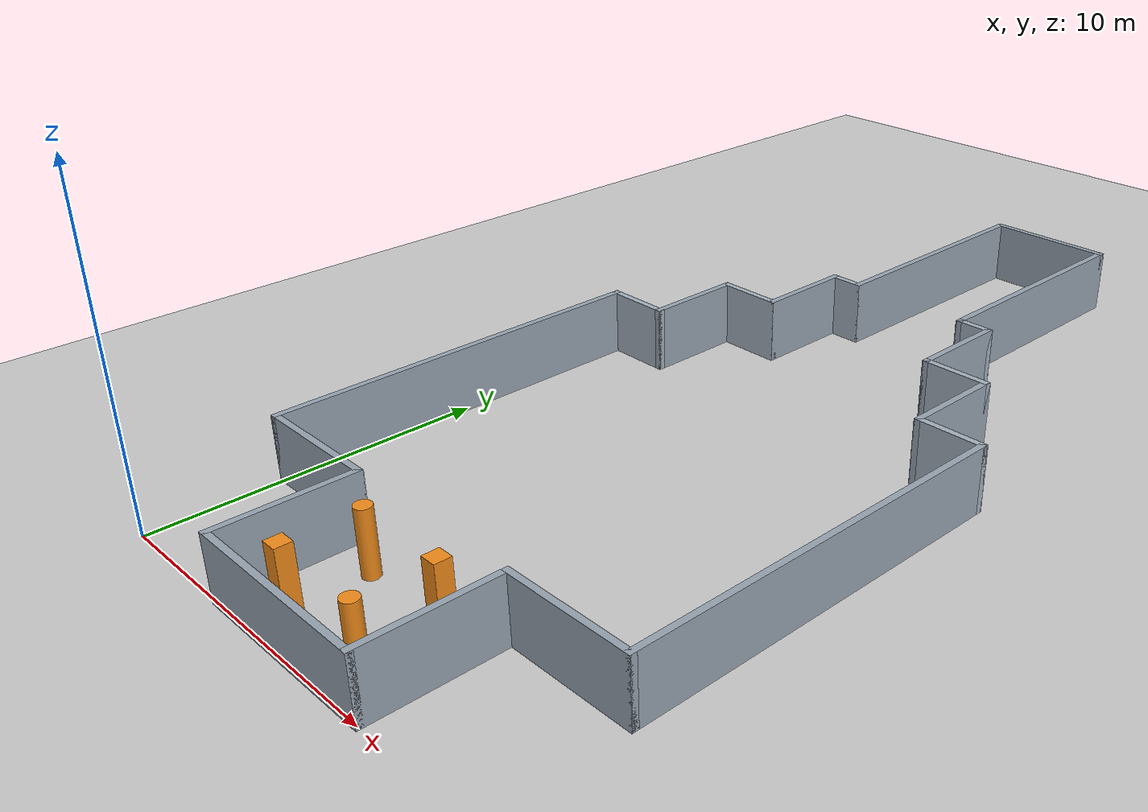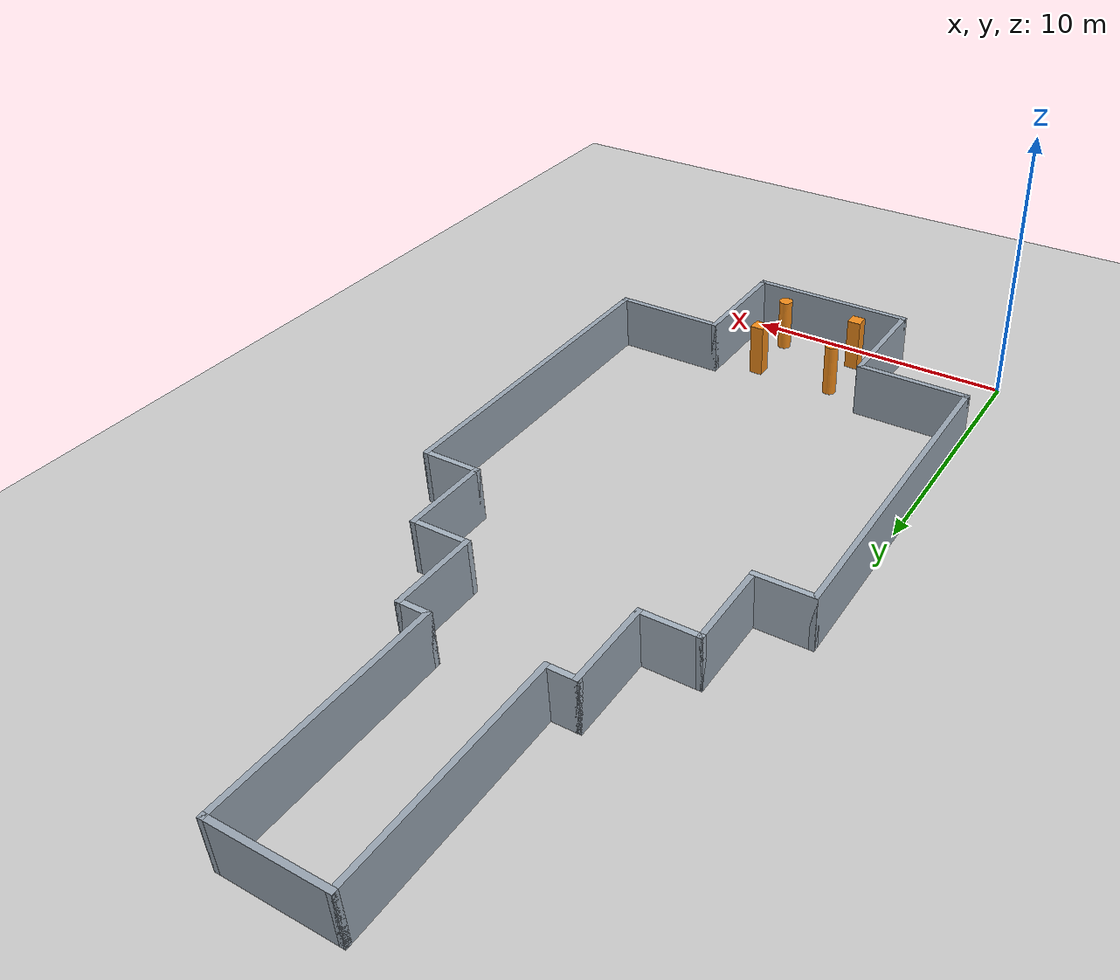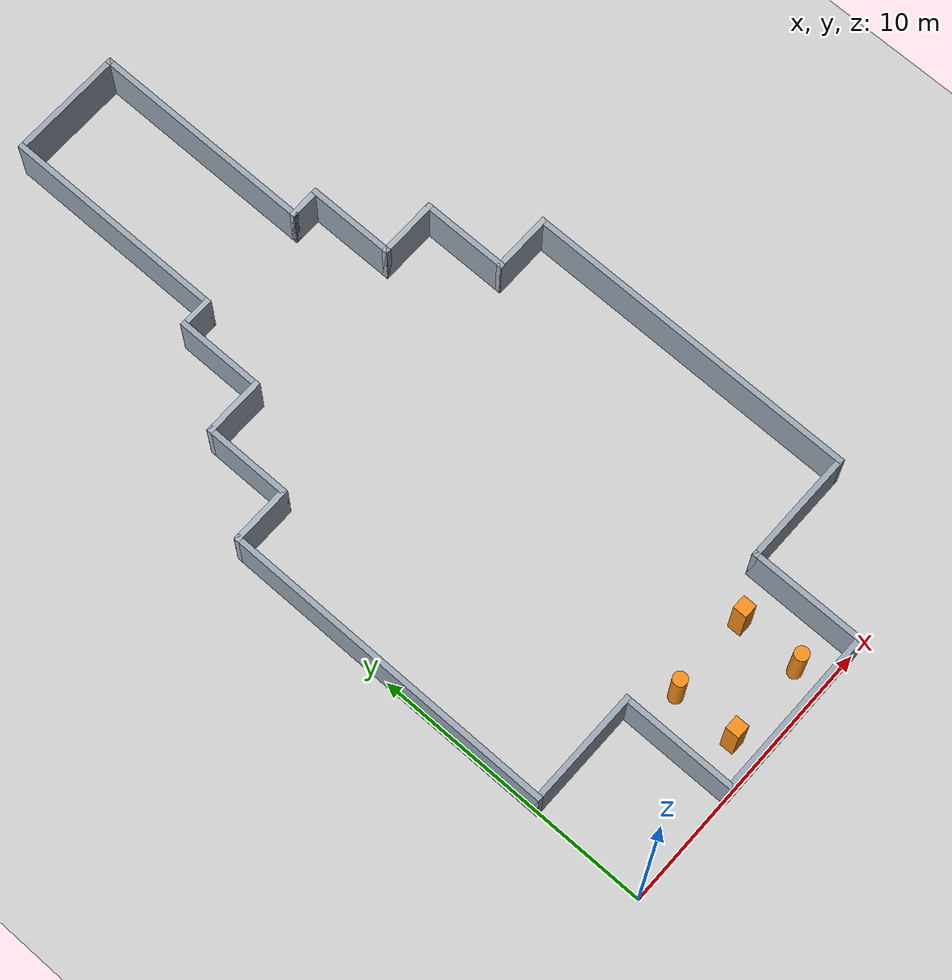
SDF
<?xml version="1.0" ?>
<sdf version="1.6">
  <world name="test_zone_world">
    <!-- 태양광 조명 -->
    <include>
      <uri>model://sun</uri>
    </include>

    <!-- 바닥 (Ground Plane) -->
    <include>
      <uri>model://ground_plane</uri>
    </include>

    <!-- 5-Zone 벤치마크 테스트 맵 모델 Include (U자형 2회 직각 꺾임 맵) -->
    <include>
      <uri>model://test_zone_map</uri>
      <pose>0 0 0 0 0 0</pose>
    </include>

    <!-- 물리 엔진 설정 (ODE 최적화) -->
    <physics type="ode">
      <real_time_update_rate>1000.0</real_time_update_rate>
      <max_step_size>0.001</max_step_size>
      <real_time_factor>1.0</real_time_factor>
      <ode>
        <solver>
          <type>quick</type>
          <iters>150</iters>
          <precon_iters>0</precon_iters>
          <sor>1.4</sor>
          <use_dynamic_moi_rescaling>1</use_dynamic_moi_rescaling>
        </solver>
        <constraints>
          <cfm>0.00001</cfm>
          <erp>0.2</erp>
          <contact_max_correcting_vel>2000.0</contact_max_correcting_vel>
          <contact_surface_layer>0.01</contact_surface_layer>
        </constraints>
      </ode>
    </physics>

    <!-- GUI 초기 카메라 조감도 시점 (14m x 30m 직선 하강형 맵 조감) -->
    <gui fullscreen="0">
      <camera name="overview_camera">
        <pose>7.0 -2.0 38.0 0.0 0.95 1.5707</pose>
        <view_controller>orbit</view_controller>
      </camera>
    </gui>
  </world>
</sdf>

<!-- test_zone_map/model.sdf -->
<sdf version="1.6">
  <model name="test_zone_map">
    <static>true</static>
    <allow_auto_disable>true</allow_auto_disable>

    <!-- 직선 하강형 점진적 확장 5-Zone 맵 (14m × 30m)                      -->
    <!-- 상단 좁은 복도(4m) → 점진 확장(6m→10m) → 대형 오픈(14m) → 회복(6m) -->
    <!-- LiDAR range_max=3.5m 절대 기준, Footprint 0.28×0.31m 기준          -->
    <!-- 경로: START(7,28) ↓ Z1 ↓ Z2 ↓ Z3(step1→step2) ↓ Z4(Open) ↓ Z5 ↓ GOAL -->

    <!--  벽체 1~20: 폐곡선 외곽 (시계 방향, 0.1m 모듈식 오버랩 보장)     -->

    <!-- 1. north_wall: Y=30, X: 5-9 (상단 복도 뚜껑) -->
    <link name="north_wall">
      <pose>7.0 30.0 1.0 0 0 0</pose>
      <collision name="collision"><geometry><box><size>4.2 0.2 2.0</size></box></geometry></collision>
      <visual name="visual">
        <geometry><box><size>4.2 0.2 2.0</size></box></geometry>
        <material>
          <ambient>0.4 0.45 0.5 1.0</ambient>
          <diffuse>0.6 0.65 0.7 1.0</diffuse>
          <script><uri>file://media/materials/scripts/gazebo.material</uri><name>Gazebo/Grey</name></script>
        </material>
      </visual>
    </link>

    <!-- 2. z12_east_wall: X=9, Y: 22-30 (Zone 1+2 동쪽 복도벽) -->
    <link name="z12_east_wall">
      <pose>9.0 26.0 1.0 0 0 0</pose>
      <collision name="collision"><geometry><box><size>0.2 8.2 2.0</size></box></geometry></collision>
      <visual name="visual">
        <geometry><box><size>0.2 8.2 2.0</size></box></geometry>
        <material>
          <ambient>0.4 0.45 0.5 1.0</ambient>
          <diffuse>0.6 0.65 0.7 1.0</diffuse>
          <script><uri>file://media/materials/scripts/gazebo.material</uri><name>Gazebo/Grey</name></script>
        </material>
      </visual>
    </link>

    <!-- 3. z3s1_east_cap: Y=22, X: 9-10 (Step1 동쪽 단차벽) -->
    <link name="z3s1_east_cap">
      <pose>9.5 22.0 1.0 0 0 0</pose>
      <collision name="collision"><geometry><box><size>1.2 0.2 2.0</size></box></geometry></collision>
      <visual name="visual">
        <geometry><box><size>1.2 0.2 2.0</size></box></geometry>
        <material>
          <ambient>0.45 0.5 0.55 1.0</ambient>
          <diffuse>0.65 0.7 0.75 1.0</diffuse>
          <script><uri>file://media/materials/scripts/gazebo.material</uri><name>Gazebo/Grey</name></script>
        </material>
      </visual>
    </link>

    <!-- 4. z3s1_east_wall: X=10, Y: 19-22 (Step1 동쪽 벽) -->
    <link name="z3s1_east_wall">
      <pose>10.0 20.5 1.0 0 0 0</pose>
      <collision name="collision"><geometry><box><size>0.2 3.2 2.0</size></box></geometry></collision>
      <visual name="visual">
        <geometry><box><size>0.2 3.2 2.0</size></box></geometry>
        <material>
          <ambient>0.4 0.45 0.5 1.0</ambient>
          <diffuse>0.6 0.65 0.7 1.0</diffuse>
          <script><uri>file://media/materials/scripts/gazebo.material</uri><name>Gazebo/Grey</name></script>
        </material>
      </visual>
    </link>

    <!-- 5. z3s2_east_cap: Y=19, X: 10-12 (Step2 동쪽 단차벽) -->
    <link name="z3s2_east_cap">
      <pose>11.0 19.0 1.0 0 0 0</pose>
      <collision name="collision"><geometry><box><size>2.2 0.2 2.0</size></box></geometry></collision>
      <visual name="visual">
        <geometry><box><size>2.2 0.2 2.0</size></box></geometry>
        <material>
          <ambient>0.45 0.5 0.55 1.0</ambient>
          <diffuse>0.65 0.7 0.75 1.0</diffuse>
          <script><uri>file://media/materials/scripts/gazebo.material</uri><name>Gazebo/Grey</name></script>
        </material>
      </visual>
    </link>

    <!-- 6. z3s2_east_wall: X=12, Y: 16-19 (Step2 동쪽 벽) -->
    <link name="z3s2_east_wall">
      <pose>12.0 17.5 1.0 0 0 0</pose>
      <collision name="collision"><geometry><box><size>0.2 3.2 2.0</size></box></geometry></collision>
      <visual name="visual">
        <geometry><box><size>0.2 3.2 2.0</size></box></geometry>
        <material>
          <ambient>0.4 0.45 0.5 1.0</ambient>
          <diffuse>0.6 0.65 0.7 1.0</diffuse>
          <script><uri>file://media/materials/scripts/gazebo.material</uri><name>Gazebo/Grey</name></script>
        </material>
      </visual>
    </link>

    <!-- 7. z4_east_cap: Y=16, X: 12-14 (Zone4 동쪽 단차벽) -->
    <link name="z4_east_cap">
      <pose>13.0 16.0 1.0 0 0 0</pose>
      <collision name="collision"><geometry><box><size>2.2 0.2 2.0</size></box></geometry></collision>
      <visual name="visual">
        <geometry><box><size>2.2 0.2 2.0</size></box></geometry>
        <material>
          <ambient>0.45 0.5 0.55 1.0</ambient>
          <diffuse>0.65 0.7 0.75 1.0</diffuse>
          <script><uri>file://media/materials/scripts/gazebo.material</uri><name>Gazebo/Grey</name></script>
        </material>
      </visual>
    </link>

    <!-- 8. z4_east_wall: X=14, Y: 4-16 (Zone4 동쪽 외벽) -->
    <link name="z4_east_wall">
      <pose>14.0 10.0 1.0 0 0 0</pose>
      <collision name="collision"><geometry><box><size>0.2 12.2 2.0</size></box></geometry></collision>
      <visual name="visual">
        <geometry><box><size>0.2 12.2 2.0</size></box></geometry>
        <material>
          <ambient>0.4 0.45 0.5 1.0</ambient>
          <diffuse>0.6 0.65 0.7 1.0</diffuse>
          <script><uri>file://media/materials/scripts/gazebo.material</uri><name>Gazebo/Grey</name></script>
        </material>
      </visual>
    </link>

    <!-- 9. z5_east_block: Y=4, X: 10-14 (Zone5 진입 동쪽 차단벽) -->
    <link name="z5_east_block">
      <pose>12.0 4.0 1.0 0 0 0</pose>
      <collision name="collision"><geometry><box><size>4.2 0.2 2.0</size></box></geometry></collision>
      <visual name="visual">
        <geometry><box><size>4.2 0.2 2.0</size></box></geometry>
        <material>
          <ambient>0.4 0.45 0.5 1.0</ambient>
          <diffuse>0.6 0.65 0.7 1.0</diffuse>
          <script><uri>file://media/materials/scripts/gazebo.material</uri><name>Gazebo/Grey</name></script>
        </material>
      </visual>
    </link>

    <!-- 10. z5_east_wall: X=10, Y: 0-4 (Zone5 동쪽 벽) -->
    <link name="z5_east_wall">
      <pose>10.0 2.0 1.0 0 0 0</pose>
      <collision name="collision"><geometry><box><size>0.2 4.2 2.0</size></box></geometry></collision>
      <visual name="visual">
        <geometry><box><size>0.2 4.2 2.0</size></box></geometry>
        <material>
          <ambient>0.4 0.45 0.5 1.0</ambient>
          <diffuse>0.6 0.65 0.7 1.0</diffuse>
          <script><uri>file://media/materials/scripts/gazebo.material</uri><name>Gazebo/Grey</name></script>
        </material>
      </visual>
    </link>

    <!-- 11. south_wall: Y=0, X: 4-10 (Zone5 바닥벽) -->
    <link name="south_wall">
      <pose>7.0 0.0 1.0 0 0 0</pose>
      <collision name="collision"><geometry><box><size>6.2 0.2 2.0</size></box></geometry></collision>
      <visual name="visual">
        <geometry><box><size>6.2 0.2 2.0</size></box></geometry>
        <material>
          <ambient>0.4 0.45 0.5 1.0</ambient>
          <diffuse>0.6 0.65 0.7 1.0</diffuse>
          <script><uri>file://media/materials/scripts/gazebo.material</uri><name>Gazebo/Grey</name></script>
        </material>
      </visual>
    </link>

    <!-- 12. z5_west_wall: X=4, Y: 0-4 (Zone5 서쪽 벽) -->
    <link name="z5_west_wall">
      <pose>4.0 2.0 1.0 0 0 0</pose>
      <collision name="collision"><geometry><box><size>0.2 4.2 2.0</size></box></geometry></collision>
      <visual name="visual">
        <geometry><box><size>0.2 4.2 2.0</size></box></geometry>
        <material>
          <ambient>0.4 0.45 0.5 1.0</ambient>
          <diffuse>0.6 0.65 0.7 1.0</diffuse>
          <script><uri>file://media/materials/scripts/gazebo.material</uri><name>Gazebo/Grey</name></script>
        </material>
      </visual>
    </link>

    <!-- 13. z5_west_block: Y=4, X: 0-4 (Zone5 진입 서쪽 차단벽) -->
    <link name="z5_west_block">
      <pose>2.0 4.0 1.0 0 0 0</pose>
      <collision name="collision"><geometry><box><size>4.2 0.2 2.0</size></box></geometry></collision>
      <visual name="visual">
        <geometry><box><size>4.2 0.2 2.0</size></box></geometry>
        <material>
          <ambient>0.4 0.45 0.5 1.0</ambient>
          <diffuse>0.6 0.65 0.7 1.0</diffuse>
          <script><uri>file://media/materials/scripts/gazebo.material</uri><name>Gazebo/Grey</name></script>
        </material>
      </visual>
    </link>

    <!-- 14. z4_west_wall: X=0, Y: 4-16 (Zone4 서쪽 외벽) -->
    <link name="z4_west_wall">
      <pose>0.0 10.0 1.0 0 0 0</pose>
      <collision name="collision"><geometry><box><size>0.2 12.2 2.0</size></box></geometry></collision>
      <visual name="visual">
        <geometry><box><size>0.2 12.2 2.0</size></box></geometry>
        <material>
          <ambient>0.4 0.45 0.5 1.0</ambient>
          <diffuse>0.6 0.65 0.7 1.0</diffuse>
          <script><uri>file://media/materials/scripts/gazebo.material</uri><name>Gazebo/Grey</name></script>
        </material>
      </visual>
    </link>

    <!-- 15. z4_west_cap: Y=16, X: 0-2 (Zone4 서쪽 단차벽) -->
    <link name="z4_west_cap">
      <pose>1.0 16.0 1.0 0 0 0</pose>
      <collision name="collision"><geometry><box><size>2.2 0.2 2.0</size></box></geometry></collision>
      <visual name="visual">
        <geometry><box><size>2.2 0.2 2.0</size></box></geometry>
        <material>
          <ambient>0.45 0.5 0.55 1.0</ambient>
          <diffuse>0.65 0.7 0.75 1.0</diffuse>
          <script><uri>file://media/materials/scripts/gazebo.material</uri><name>Gazebo/Grey</name></script>
        </material>
      </visual>
    </link>

    <!-- 16. z3s2_west_wall: X=2, Y: 16-19 (Step2 서쪽 벽) -->
    <link name="z3s2_west_wall">
      <pose>2.0 17.5 1.0 0 0 0</pose>
      <collision name="collision"><geometry><box><size>0.2 3.2 2.0</size></box></geometry></collision>
      <visual name="visual">
        <geometry><box><size>0.2 3.2 2.0</size></box></geometry>
        <material>
          <ambient>0.4 0.45 0.5 1.0</ambient>
          <diffuse>0.6 0.65 0.7 1.0</diffuse>
          <script><uri>file://media/materials/scripts/gazebo.material</uri><name>Gazebo/Grey</name></script>
        </material>
      </visual>
    </link>

    <!-- 17. z3s2_west_cap: Y=19, X: 2-4 (Step2 서쪽 단차벽) -->
    <link name="z3s2_west_cap">
      <pose>3.0 19.0 1.0 0 0 0</pose>
      <collision name="collision"><geometry><box><size>2.2 0.2 2.0</size></box></geometry></collision>
      <visual name="visual">
        <geometry><box><size>2.2 0.2 2.0</size></box></geometry>
        <material>
          <ambient>0.45 0.5 0.55 1.0</ambient>
          <diffuse>0.65 0.7 0.75 1.0</diffuse>
          <script><uri>file://media/materials/scripts/gazebo.material</uri><name>Gazebo/Grey</name></script>
        </material>
      </visual>
    </link>

    <!-- 18. z3s1_west_wall: X=4, Y: 19-22 (Step1 서쪽 벽) -->
    <link name="z3s1_west_wall">
      <pose>4.0 20.5 1.0 0 0 0</pose>
      <collision name="collision"><geometry><box><size>0.2 3.2 2.0</size></box></geometry></collision>
      <visual name="visual">
        <geometry><box><size>0.2 3.2 2.0</size></box></geometry>
        <material>
          <ambient>0.4 0.45 0.5 1.0</ambient>
          <diffuse>0.6 0.65 0.7 1.0</diffuse>
          <script><uri>file://media/materials/scripts/gazebo.material</uri><name>Gazebo/Grey</name></script>
        </material>
      </visual>
    </link>

    <!-- 19. z3s1_west_cap: Y=22, X: 4-5 (Step1 서쪽 단차벽) -->
    <link name="z3s1_west_cap">
      <pose>4.5 22.0 1.0 0 0 0</pose>
      <collision name="collision"><geometry><box><size>1.2 0.2 2.0</size></box></geometry></collision>
      <visual name="visual">
        <geometry><box><size>1.2 0.2 2.0</size></box></geometry>
        <material>
          <ambient>0.45 0.5 0.55 1.0</ambient>
          <diffuse>0.65 0.7 0.75 1.0</diffuse>
          <script><uri>file://media/materials/scripts/gazebo.material</uri><name>Gazebo/Grey</name></script>
        </material>
      </visual>
    </link>

    <!-- 20. z12_west_wall: X=5, Y: 22-30 (Zone 1+2 서쪽 복도벽) -->
    <link name="z12_west_wall">
      <pose>5.0 26.0 1.0 0 0 0</pose>
      <collision name="collision"><geometry><box><size>0.2 8.2 2.0</size></box></geometry></collision>
      <visual name="visual">
        <geometry><box><size>0.2 8.2 2.0</size></box></geometry>
        <material>
          <ambient>0.4 0.45 0.5 1.0</ambient>
          <diffuse>0.6 0.65 0.7 1.0</diffuse>
          <script><uri>file://media/materials/scripts/gazebo.material</uri><name>Gazebo/Grey</name></script>
        </material>
      </visual>
    </link>

    <!--  Zone 5 비대칭 정적 랜드마크 (AMCL Relocalization 유도)         -->

    <!-- 21. z5_landmark_1: 북서측 원기둥 -->
    <link name="z5_landmark_cyl_nw">
      <pose>5.5 3.2 1.0 0 0 0</pose>
      <collision name="collision"><geometry><cylinder><radius>0.25</radius><length>2.0</length></cylinder></geometry></collision>
      <visual name="visual">
        <geometry><cylinder><radius>0.25</radius><length>2.0</length></cylinder></geometry>
        <material>
          <ambient>0.7 0.3 0.1 1.0</ambient>
          <diffuse>0.85 0.4 0.15 1.0</diffuse>
          <script><uri>file://media/materials/scripts/gazebo.material</uri><name>Gazebo/Orange</name></script>
        </material>
      </visual>
    </link>

    <!-- 22. z5_landmark_2: 북동측 사각기둥 -->
    <link name="z5_landmark_box_ne">
      <pose>8.5 3.2 1.0 0 0 0</pose>
      <collision name="collision"><geometry><box><size>0.5 0.5 2.0</size></box></geometry></collision>
      <visual name="visual">
        <geometry><box><size>0.5 0.5 2.0</size></box></geometry>
        <material>
          <ambient>0.7 0.3 0.1 1.0</ambient>
          <diffuse>0.85 0.4 0.15 1.0</diffuse>
          <script><uri>file://media/materials/scripts/gazebo.material</uri><name>Gazebo/Orange</name></script>
        </material>
      </visual>
    </link>

    <!-- 23. z5_landmark_3: 남서측 사각기둥 -->
    <link name="z5_landmark_box_sw">
      <pose>5.5 1.0 1.0 0 0 0</pose>
      <collision name="collision"><geometry><box><size>0.5 0.5 2.0</size></box></geometry></collision>
      <visual name="visual">
        <geometry><box><size>0.5 0.5 2.0</size></box></geometry>
        <material>
          <ambient>0.7 0.3 0.1 1.0</ambient>
          <diffuse>0.85 0.4 0.15 1.0</diffuse>
          <script><uri>file://media/materials/scripts/gazebo.material</uri><name>Gazebo/Orange</name></script>
        </material>
      </visual>
    </link>

    <!-- 24. z5_landmark_4: 남동측 원기둥 -->
    <link name="z5_landmark_cyl_se">
      <pose>8.5 1.0 1.0 0 0 0</pose>
      <collision name="collision"><geometry><cylinder><radius>0.25</radius><length>2.0</length></cylinder></geometry></collision>
      <visual name="visual">
        <geometry><cylinder><radius>0.25</radius><length>2.0</length></cylinder></geometry>
        <material>
          <ambient>0.7 0.3 0.1 1.0</ambient>
          <diffuse>0.85 0.4 0.15 1.0</diffuse>
          <script><uri>file://media/materials/scripts/gazebo.material</uri><name>Gazebo/Orange</name></script>
        </material>
      </visual>
    </link>

  </model>
</sdf>
